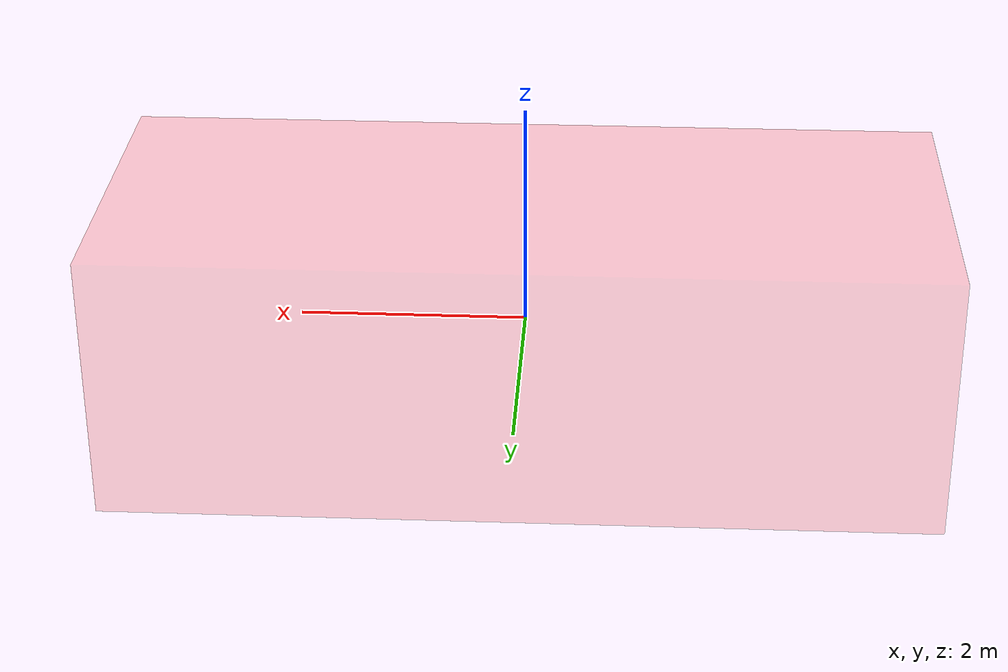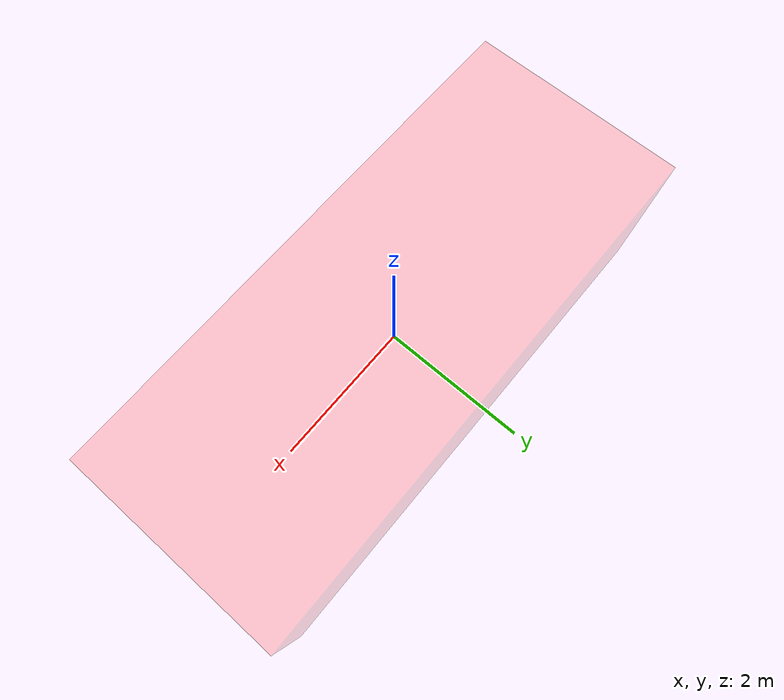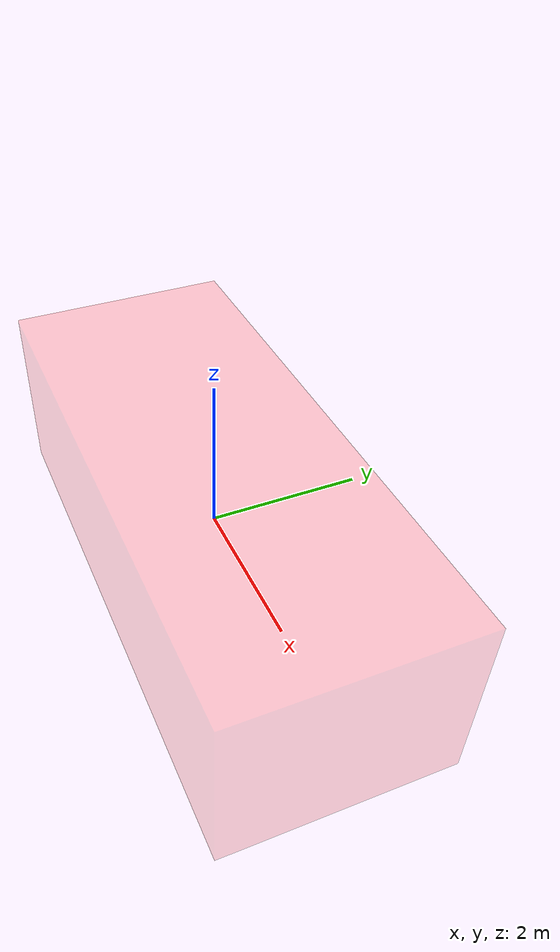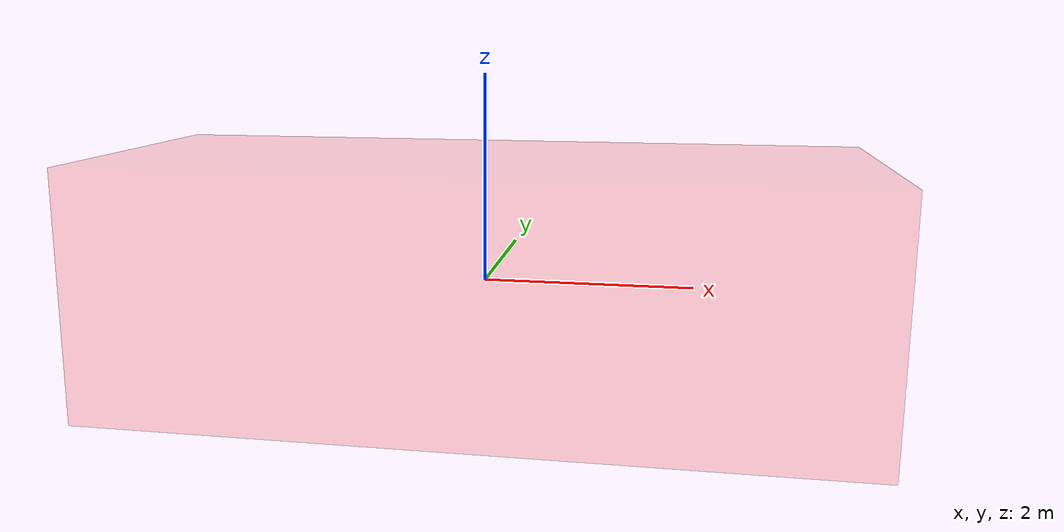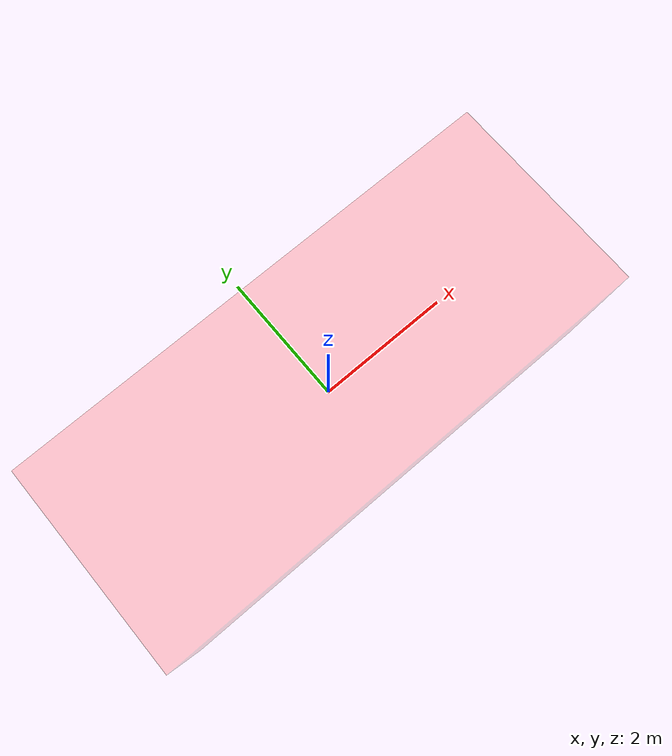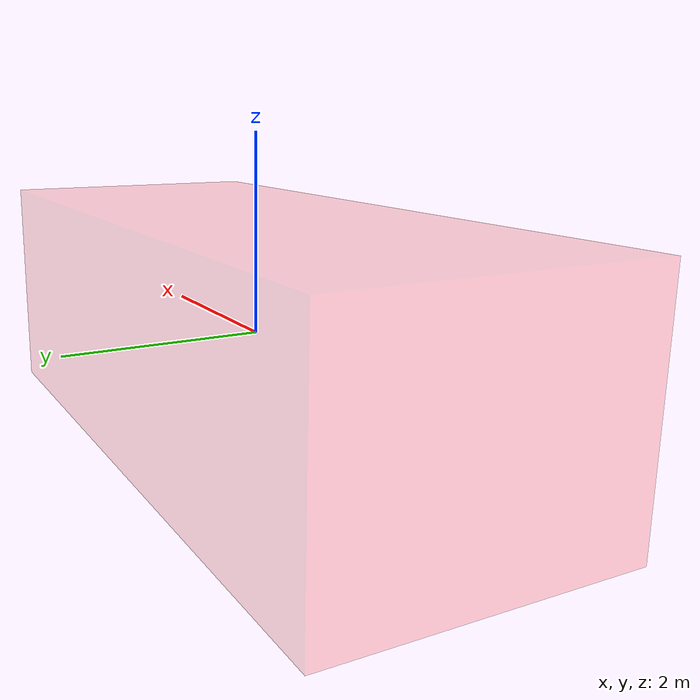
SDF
<?xml version="1.0"?>
<sdf version="1.6">
  <model name="restricted_zone">
    <static>true</static>
    <link name="zone_link">
      <visual name="zone_visual">
        <!-- 거의 바닥 위에 살짝 떠 있는 얇은 판 -->
        <pose>0 0 0.01 0 0 0</pose>
        <geometry>
          <box>
            <size>7.3 3 2.4</size>
          </box>
        </geometry>
        <material>
          <!-- 빨간색, 반투명 (a=0.4) -->
          <ambient>1 0 0 0.2</ambient>
          <diffuse>1 0 0 0.2</diffuse>
          <specular>0.1 0.1 0.1 1</specular>
        </material>
        <cast_shadows>false</cast_shadows>
      </visual>
    </link>
  </model>
</sdf>
